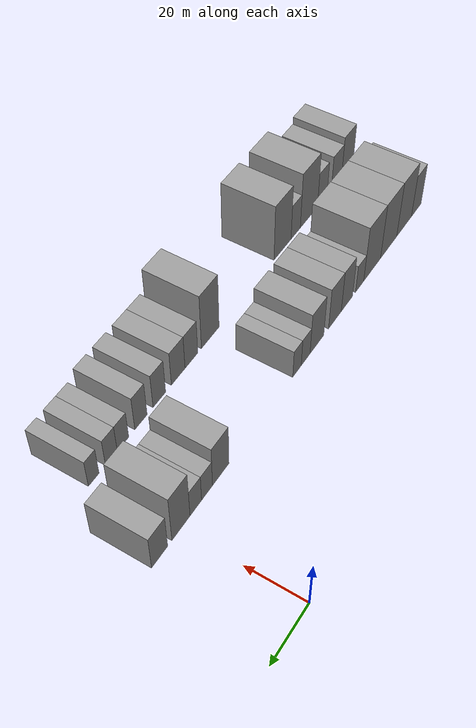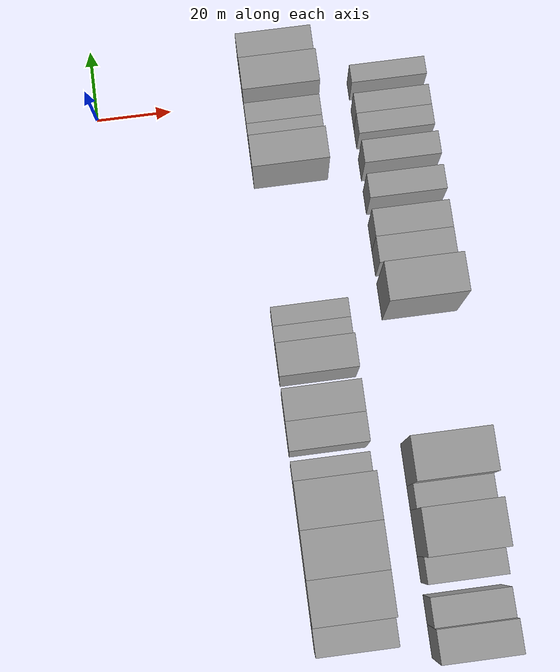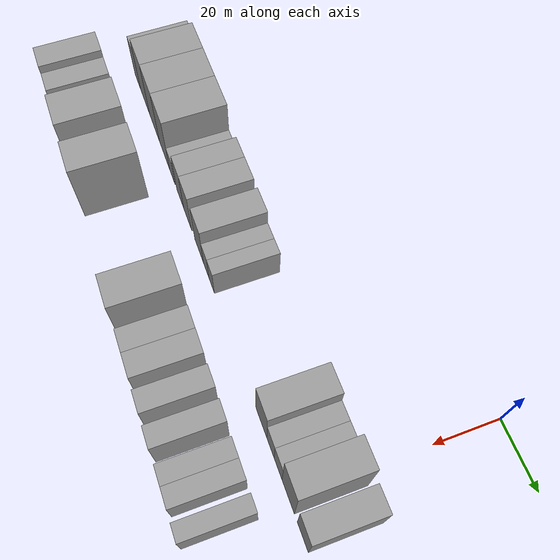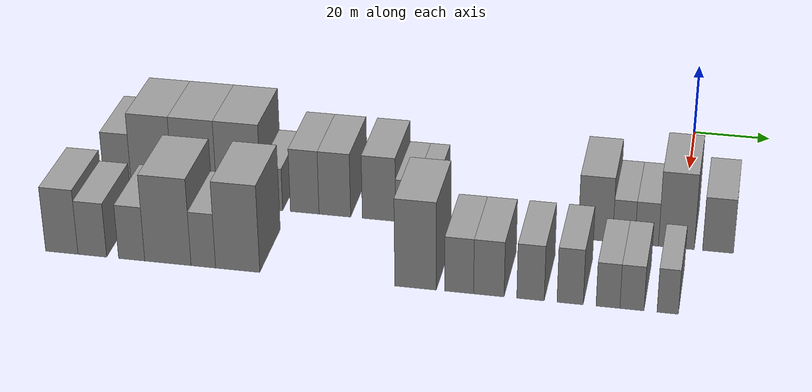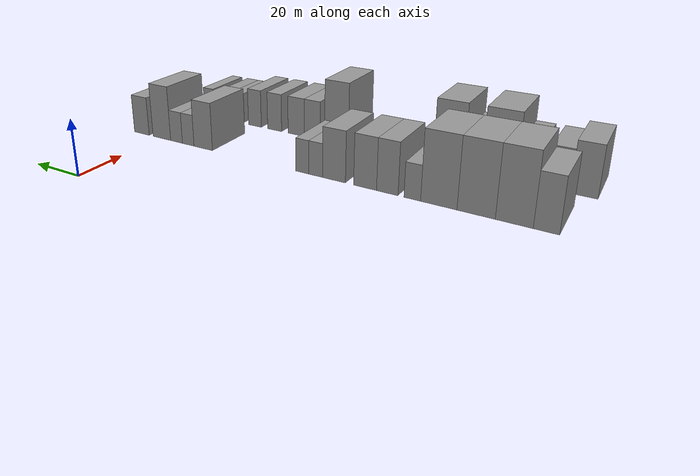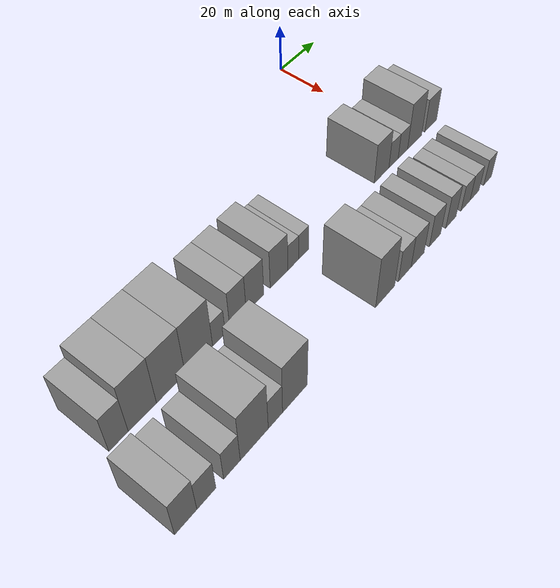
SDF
<sdf version="1.6">
 <world name="default">
  <model name="building_15">
   <static>1</static>
   <pose>50.0000 -142.7405 0 0.000000 0.000000 0.000000</pose>
   <link name="link">
    <pose>0 0 9.00 0 0 0</pose>
    <collision name="collision"><geometry><box><size>20.0000 7.2610 18.0000</size></box></geometry></collision>
    <visual name="visual">
     <cast_shadows>0</cast_shadows>
     <geometry><box><size>20.0000 7.2610 18.0000</size></box></geometry>
     <material>
      <script>
       <uri>model://grey_wall/materials/scripts</uri>
       <uri>model://grey_wall/materials/textures</uri>
       <name>vrc/grey_wall</name>
      </script>
     </material>
    </visual>
   </link>
  </model>
  <model name="building_16">
   <static>1</static>
   <pose>50.0000 -133.6735 0 0.000000 0.000000 0.000000</pose>
   <link name="link">
    <pose>0 0 12.00 0 0 0</pose>
    <collision name="collision"><geometry><box><size>20.0000 10.8730 24.0000</size></box></geometry></collision>
    <visual name="visual">
     <cast_shadows>0</cast_shadows>
     <geometry><box><size>20.0000 10.8730 24.0000</size></box></geometry>
     <material>
      <script>
       <uri>model://grey_wall/materials/scripts</uri>
       <uri>model://grey_wall/materials/textures</uri>
       <name>vrc/grey_wall</name>
      </script>
     </material>
    </visual>
   </link>
  </model>
  <model name="building_17">
   <static>1</static>
   <pose>50.0000 -122.4507 0 0.000000 0.000000 0.000000</pose>
   <link name="link">
    <pose>0 0 12.00 0 0 0</pose>
    <collision name="collision"><geometry><box><size>20.0000 11.5726 24.0000</size></box></geometry></collision>
    <visual name="visual">
     <cast_shadows>0</cast_shadows>
     <geometry><box><size>20.0000 11.5726 24.0000</size></box></geometry>
     <material>
      <script>
       <uri>model://grey_wall/materials/scripts</uri>
       <uri>model://grey_wall/materials/textures</uri>
       <name>vrc/grey_wall</name>
      </script>
     </material>
    </visual>
   </link>
  </model>
  <model name="building_18">
   <static>1</static>
   <pose>50.0000 -110.8684 0 0.000000 0.000000 0.000000</pose>
   <link name="link">
    <pose>0 0 12.00 0 0 0</pose>
    <collision name="collision"><geometry><box><size>20.0000 11.5920 24.0000</size></box></geometry></collision>
    <visual name="visual">
     <cast_shadows>0</cast_shadows>
     <geometry><box><size>20.0000 11.5920 24.0000</size></box></geometry>
     <material>
      <script>
       <uri>model://grey_wall/materials/scripts</uri>
       <uri>model://grey_wall/materials/textures</uri>
       <name>vrc/grey_wall</name>
      </script>
     </material>
    </visual>
   </link>
  </model>
  <model name="building_19">
   <static>1</static>
   <pose>50.0000 -102.3278 0 0.000000 0.000000 0.000000</pose>
   <link name="link">
    <pose>0 0 6.00 0 0 0</pose>
    <collision name="collision"><geometry><box><size>20.0000 5.4891 12.0000</size></box></geometry></collision>
    <visual name="visual">
     <cast_shadows>0</cast_shadows>
     <geometry><box><size>20.0000 5.4891 12.0000</size></box></geometry>
     <material>
      <script>
       <uri>model://grey_wall/materials/scripts</uri>
       <uri>model://grey_wall/materials/textures</uri>
       <name>vrc/grey_wall</name>
      </script>
     </material>
    </visual>
   </link>
  </model>
  <model name="building_20">
   <static>1</static>
   <pose>50.0000 -93.8886 0 0.000000 0.000000 0.000000</pose>
   <link name="link">
    <pose>0 0 9.00 0 0 0</pose>
    <collision name="collision"><geometry><box><size>20.0000 7.3894 18.0000</size></box></geometry></collision>
    <visual name="visual">
     <cast_shadows>0</cast_shadows>
     <geometry><box><size>20.0000 7.3894 18.0000</size></box></geometry>
     <material>
      <script>
       <uri>model://grey_wall/materials/scripts</uri>
       <uri>model://grey_wall/materials/textures</uri>
       <name>vrc/grey_wall</name>
      </script>
     </material>
    </visual>
   </link>
  </model>
  <model name="building_21">
   <static>1</static>
   <pose>50.0000 -86.1221 0 0.000000 0.000000 0.000000</pose>
   <link name="link">
    <pose>0 0 9.00 0 0 0</pose>
    <collision name="collision"><geometry><box><size>20.0000 8.1436 18.0000</size></box></geometry></collision>
    <visual name="visual">
     <cast_shadows>0</cast_shadows>
     <geometry><box><size>20.0000 8.1436 18.0000</size></box></geometry>
     <material>
      <script>
       <uri>model://grey_wall/materials/scripts</uri>
       <uri>model://grey_wall/materials/textures</uri>
       <name>vrc/grey_wall</name>
      </script>
     </material>
    </visual>
   </link>
  </model>
  <model name="building_22">
   <static>1</static>
   <pose>50.0000 -74.8031 0 0.000000 0.000000 0.000000</pose>
   <link name="link">
    <pose>0 0 9.00 0 0 0</pose>
    <collision name="collision"><geometry><box><size>20.0000 8.4944 18.0000</size></box></geometry></collision>
    <visual name="visual">
     <cast_shadows>0</cast_shadows>
     <geometry><box><size>20.0000 8.4944 18.0000</size></box></geometry>
     <material>
      <script>
       <uri>model://grey_wall/materials/scripts</uri>
       <uri>model://grey_wall/materials/textures</uri>
       <name>vrc/grey_wall</name>
      </script>
     </material>
    </visual>
   </link>
  </model>
  <model name="building_23">
   <static>1</static>
   <pose>50.0000 -67.8921 0 0.000000 0.000000 0.000000</pose>
   <link name="link">
    <pose>0 0 6.00 0 0 0</pose>
    <collision name="collision"><geometry><box><size>20.0000 5.3276 12.0000</size></box></geometry></collision>
    <visual name="visual">
     <cast_shadows>0</cast_shadows>
     <geometry><box><size>20.0000 5.3276 12.0000</size></box></geometry>
     <material>
      <script>
       <uri>model://grey_wall/materials/scripts</uri>
       <uri>model://grey_wall/materials/textures</uri>
       <name>vrc/grey_wall</name>
      </script>
     </material>
    </visual>
   </link>
  </model>
  <model name="building_24">
   <static>1</static>
   <pose>50.0000 -62.7236 0 0.000000 0.000000 0.000000</pose>
   <link name="link">
    <pose>0 0 6.00 0 0 0</pose>
    <collision name="collision"><geometry><box><size>20.0000 5.0095 12.0000</size></box></geometry></collision>
    <visual name="visual">
     <cast_shadows>0</cast_shadows>
     <geometry><box><size>20.0000 5.0095 12.0000</size></box></geometry>
     <material>
      <script>
       <uri>model://grey_wall/materials/scripts</uri>
       <uri>model://grey_wall/materials/textures</uri>
       <name>vrc/grey_wall</name>
      </script>
     </material>
    </visual>
   </link>
  </model>
  <model name="building_25">
   <static>1</static>
   <pose>50.0000 -20.4532 0 0.000000 0.000000 0.000000</pose>
   <link name="link">
    <pose>0 0 9.00 0 0 0</pose>
    <collision name="collision"><geometry><box><size>20.0000 8.5104 18.0000</size></box></geometry></collision>
    <visual name="visual">
     <cast_shadows>0</cast_shadows>
     <geometry><box><size>20.0000 8.5104 18.0000</size></box></geometry>
     <material>
      <script>
       <uri>model://grey_wall/materials/scripts</uri>
       <uri>model://grey_wall/materials/textures</uri>
       <name>vrc/grey_wall</name>
      </script>
     </material>
    </visual>
   </link>
  </model>
  <model name="building_26">
   <static>1</static>
   <pose>50.0000 -13.4465 0 0.000000 0.000000 0.000000</pose>
   <link name="link">
    <pose>0 0 6.00 0 0 0</pose>
    <collision name="collision"><geometry><box><size>20.0000 5.5029 12.0000</size></box></geometry></collision>
    <visual name="visual">
     <cast_shadows>0</cast_shadows>
     <geometry><box><size>20.0000 5.5029 12.0000</size></box></geometry>
     <material>
      <script>
       <uri>model://grey_wall/materials/scripts</uri>
       <uri>model://grey_wall/materials/textures</uri>
       <name>vrc/grey_wall</name>
      </script>
     </material>
    </visual>
   </link>
  </model>
  <model name="building_27">
   <static>1</static>
   <pose>50.0000 -7.8322 0 0.000000 0.000000 0.000000</pose>
   <link name="link">
    <pose>0 0 6.00 0 0 0</pose>
    <collision name="collision"><geometry><box><size>20.0000 5.7257 12.0000</size></box></geometry></collision>
    <visual name="visual">
     <cast_shadows>0</cast_shadows>
     <geometry><box><size>20.0000 5.7257 12.0000</size></box></geometry>
     <material>
      <script>
       <uri>model://grey_wall/materials/scripts</uri>
       <uri>model://grey_wall/materials/textures</uri>
       <name>vrc/grey_wall</name>
      </script>
     </material>
    </visual>
   </link>
  </model>
  <model name="building_28">
   <static>1</static>
   <pose>50.0000 -0.5983 0 0.000000 0.000000 0.000000</pose>
   <link name="link">
    <pose>0 0 10.50 0 0 0</pose>
    <collision name="collision"><geometry><box><size>20.0000 8.7422 21.0000</size></box></geometry></collision>
    <visual name="visual">
     <cast_shadows>0</cast_shadows>
     <geometry><box><size>20.0000 8.7422 21.0000</size></box></geometry>
     <material>
      <script>
       <uri>model://grey_wall/materials/scripts</uri>
       <uri>model://grey_wall/materials/textures</uri>
       <name>vrc/grey_wall</name>
      </script>
     </material>
    </visual>
   </link>
  </model>
  <model name="building_29">
   <static>1</static>
   <pose>50.0000 9.5227 0 0.000000 0.000000 0.000000</pose>
   <link name="link">
    <pose>0 0 7.50 0 0 0</pose>
    <collision name="collision"><geometry><box><size>20.0000 7.4998 15.0000</size></box></geometry></collision>
    <visual name="visual">
     <cast_shadows>0</cast_shadows>
     <geometry><box><size>20.0000 7.4998 15.0000</size></box></geometry>
     <material>
      <script>
       <uri>model://grey_wall/materials/scripts</uri>
       <uri>model://grey_wall/materials/textures</uri>
       <name>vrc/grey_wall</name>
      </script>
     </material>
    </visual>
   </link>
  </model>
  <model name="building_75">
   <static>1</static>
   <pose>79.0000 -147.6373 0 0.000000 0.000000 0.000000</pose>
   <link name="link">
    <pose>0 0 9.00 0 0 0</pose>
    <collision name="collision"><geometry><box><size>20.0000 8.2457 18.0000</size></box></geometry></collision>
    <visual name="visual">
     <cast_shadows>0</cast_shadows>
     <geometry><box><size>20.0000 8.2457 18.0000</size></box></geometry>
     <material>
      <script>
       <uri>model://grey_wall/materials/scripts</uri>
       <uri>model://grey_wall/materials/textures</uri>
       <name>vrc/grey_wall</name>
      </script>
     </material>
    </visual>
   </link>
  </model>
  <model name="building_76">
   <static>1</static>
   <pose>79.0000 -139.8728 0 0.000000 0.000000 0.000000</pose>
   <link name="link">
    <pose>0 0 7.50 0 0 0</pose>
    <collision name="collision"><geometry><box><size>20.0000 7.2834 15.0000</size></box></geometry></collision>
    <visual name="visual">
     <cast_shadows>0</cast_shadows>
     <geometry><box><size>20.0000 7.2834 15.0000</size></box></geometry>
     <material>
      <script>
       <uri>model://grey_wall/materials/scripts</uri>
       <uri>model://grey_wall/materials/textures</uri>
       <name>vrc/grey_wall</name>
      </script>
     </material>
    </visual>
   </link>
  </model>
  <model name="building_77">
   <static>1</static>
   <pose>79.0000 -129.9298 0 0.000000 0.000000 0.000000</pose>
   <link name="link">
    <pose>0 0 7.50 0 0 0</pose>
    <collision name="collision"><geometry><box><size>20.0000 6.6025 15.0000</size></box></geometry></collision>
    <visual name="visual">
     <cast_shadows>0</cast_shadows>
     <geometry><box><size>20.0000 6.6025 15.0000</size></box></geometry>
     <material>
      <script>
       <uri>model://grey_wall/materials/scripts</uri>
       <uri>model://grey_wall/materials/textures</uri>
       <name>vrc/grey_wall</name>
      </script>
     </material>
    </visual>
   </link>
  </model>
  <model name="building_78">
   <static>1</static>
   <pose>79.0000 -120.8289 0 0.000000 0.000000 0.000000</pose>
   <link name="link">
    <pose>0 0 12.00 0 0 0</pose>
    <collision name="collision"><geometry><box><size>20.0000 11.5993 24.0000</size></box></geometry></collision>
    <visual name="visual">
     <cast_shadows>0</cast_shadows>
     <geometry><box><size>20.0000 11.5993 24.0000</size></box></geometry>
     <material>
      <script>
       <uri>model://grey_wall/materials/scripts</uri>
       <uri>model://grey_wall/materials/textures</uri>
       <name>vrc/grey_wall</name>
      </script>
     </material>
    </visual>
   </link>
  </model>
  <model name="building_79">
   <static>1</static>
   <pose>79.0000 -111.9690 0 0.000000 0.000000 0.000000</pose>
   <link name="link">
    <pose>0 0 7.50 0 0 0</pose>
    <collision name="collision"><geometry><box><size>20.0000 6.1206 15.0000</size></box></geometry></collision>
    <visual name="visual">
     <cast_shadows>0</cast_shadows>
     <geometry><box><size>20.0000 6.1206 15.0000</size></box></geometry>
     <material>
      <script>
       <uri>model://grey_wall/materials/scripts</uri>
       <uri>model://grey_wall/materials/textures</uri>
       <name>vrc/grey_wall</name>
      </script>
     </material>
    </visual>
   </link>
  </model>
  <model name="building_80">
   <static>1</static>
   <pose>79.0000 -103.4311 0 0.000000 0.000000 0.000000</pose>
   <link name="link">
    <pose>0 0 12.00 0 0 0</pose>
    <collision name="collision"><geometry><box><size>20.0000 10.9552 24.0000</size></box></geometry></collision>
    <visual name="visual">
     <cast_shadows>0</cast_shadows>
     <geometry><box><size>20.0000 10.9552 24.0000</size></box></geometry>
     <material>
      <script>
       <uri>model://grey_wall/materials/scripts</uri>
       <uri>model://grey_wall/materials/textures</uri>
       <name>vrc/grey_wall</name>
      </script>
     </material>
    </visual>
   </link>
  </model>
  <model name="building_81">
   <static>1</static>
   <pose>79.0000 -59.9720 0 0.000000 0.000000 0.000000</pose>
   <link name="link">
    <pose>0 0 12.00 0 0 0</pose>
    <collision name="collision"><geometry><box><size>20.0000 9.9876 24.0000</size></box></geometry></collision>
    <visual name="visual">
     <cast_shadows>0</cast_shadows>
     <geometry><box><size>20.0000 9.9876 24.0000</size></box></geometry>
     <material>
      <script>
       <uri>model://grey_wall/materials/scripts</uri>
       <uri>model://grey_wall/materials/textures</uri>
       <name>vrc/grey_wall</name>
      </script>
     </material>
    </visual>
   </link>
  </model>
  <model name="building_82">
   <static>1</static>
   <pose>79.0000 -49.5220 0 0.000000 0.000000 0.000000</pose>
   <link name="link">
    <pose>0 0 7.50 0 0 0</pose>
    <collision name="collision"><geometry><box><size>20.0000 6.9124 15.0000</size></box></geometry></collision>
    <visual name="visual">
     <cast_shadows>0</cast_shadows>
     <geometry><box><size>20.0000 6.9124 15.0000</size></box></geometry>
     <material>
      <script>
       <uri>model://grey_wall/materials/scripts</uri>
       <uri>model://grey_wall/materials/textures</uri>
       <name>vrc/grey_wall</name>
      </script>
     </material>
    </visual>
   </link>
  </model>
  <model name="building_83">
   <static>1</static>
   <pose>79.0000 -42.4310 0 0.000000 0.000000 0.000000</pose>
   <link name="link">
    <pose>0 0 7.50 0 0 0</pose>
    <collision name="collision"><geometry><box><size>20.0000 7.2695 15.0000</size></box></geometry></collision>
    <visual name="visual">
     <cast_shadows>0</cast_shadows>
     <geometry><box><size>20.0000 7.2695 15.0000</size></box></geometry>
     <material>
      <script>
       <uri>model://grey_wall/materials/scripts</uri>
       <uri>model://grey_wall/materials/textures</uri>
       <name>vrc/grey_wall</name>
      </script>
     </material>
    </visual>
   </link>
  </model>
  <model name="building_84">
   <static>1</static>
   <pose>79.0000 -32.5478 0 0.000000 0.000000 0.000000</pose>
   <link name="link">
    <pose>0 0 7.50 0 0 0</pose>
    <collision name="collision"><geometry><box><size>20.0000 6.4969 15.0000</size></box></geometry></collision>
    <visual name="visual">
     <cast_shadows>0</cast_shadows>
     <geometry><box><size>20.0000 6.4969 15.0000</size></box></geometry>
     <material>
      <script>
       <uri>model://grey_wall/materials/scripts</uri>
       <uri>model://grey_wall/materials/textures</uri>
       <name>vrc/grey_wall</name>
      </script>
     </material>
    </visual>
   </link>
  </model>
  <model name="building_85">
   <static>1</static>
   <pose>79.0000 -23.2210 0 0.000000 0.000000 0.000000</pose>
   <link name="link">
    <pose>0 0 7.50 0 0 0</pose>
    <collision name="collision"><geometry><box><size>20.0000 6.1567 15.0000</size></box></geometry></collision>
    <visual name="visual">
     <cast_shadows>0</cast_shadows>
     <geometry><box><size>20.0000 6.1567 15.0000</size></box></geometry>
     <material>
      <script>
       <uri>model://grey_wall/materials/scripts</uri>
       <uri>model://grey_wall/materials/textures</uri>
       <name>vrc/grey_wall</name>
      </script>
     </material>
    </visual>
   </link>
  </model>
  <model name="building_86">
   <static>1</static>
   <pose>79.0000 -14.3555 0 0.000000 0.000000 0.000000</pose>
   <link name="link">
    <pose>0 0 6.00 0 0 0</pose>
    <collision name="collision"><geometry><box><size>20.0000 5.5742 12.0000</size></box></geometry></collision>
    <visual name="visual">
     <cast_shadows>0</cast_shadows>
     <geometry><box><size>20.0000 5.5742 12.0000</size></box></geometry>
     <material>
      <script>
       <uri>model://grey_wall/materials/scripts</uri>
       <uri>model://grey_wall/materials/textures</uri>
       <name>vrc/grey_wall</name>
      </script>
     </material>
    </visual>
   </link>
  </model>
  <model name="building_87">
   <static>1</static>
   <pose>79.0000 -8.7597 0 0.000000 0.000000 0.000000</pose>
   <link name="link">
    <pose>0 0 6.00 0 0 0</pose>
    <collision name="collision"><geometry><box><size>20.0000 5.6173 12.0000</size></box></geometry></collision>
    <visual name="visual">
     <cast_shadows>0</cast_shadows>
     <geometry><box><size>20.0000 5.6173 12.0000</size></box></geometry>
     <material>
      <script>
       <uri>model://grey_wall/materials/scripts</uri>
       <uri>model://grey_wall/materials/textures</uri>
       <name>vrc/grey_wall</name>
      </script>
     </material>
    </visual>
   </link>
  </model>
  <model name="building_88">
   <static>1</static>
   <pose>79.0000 -0.4767 0 0.000000 0.000000 0.000000</pose>
   <link name="link">
    <pose>0 0 6.00 0 0 0</pose>
    <collision name="collision"><geometry><box><size>20.0000 4.9488 12.0000</size></box></geometry></collision>
    <visual name="visual">
     <cast_shadows>0</cast_shadows>
     <geometry><box><size>20.0000 4.9488 12.0000</size></box></geometry>
     <material>
      <script>
       <uri>model://grey_wall/materials/scripts</uri>
       <uri>model://grey_wall/materials/textures</uri>
       <name>vrc/grey_wall</name>
      </script>
     </material>
    </visual>
   </link>
  </model>
 </world>
</sdf>
